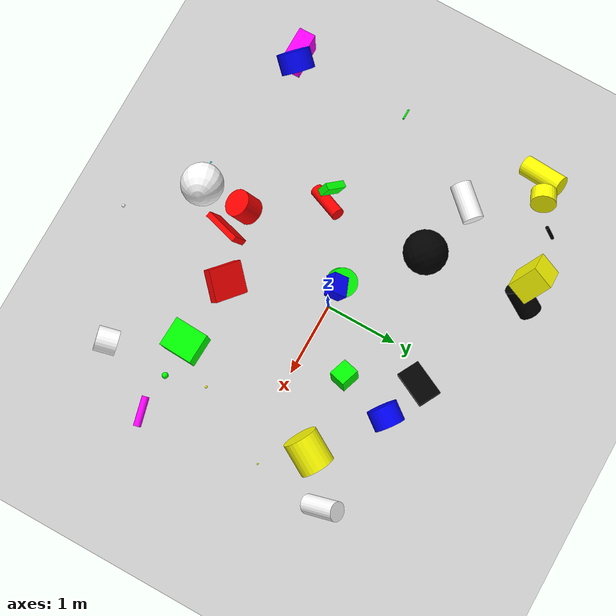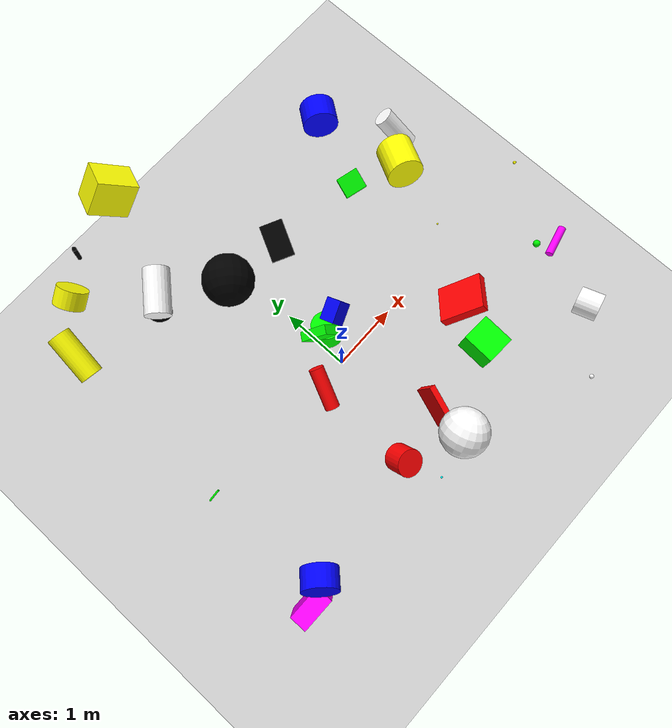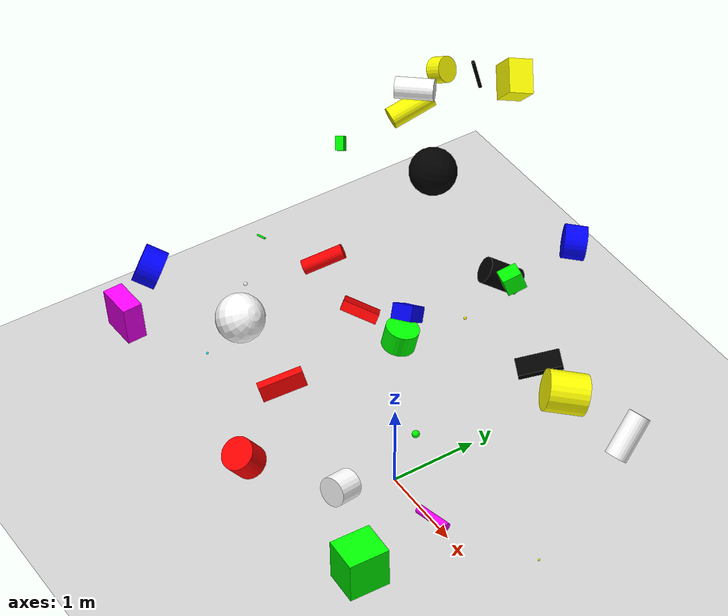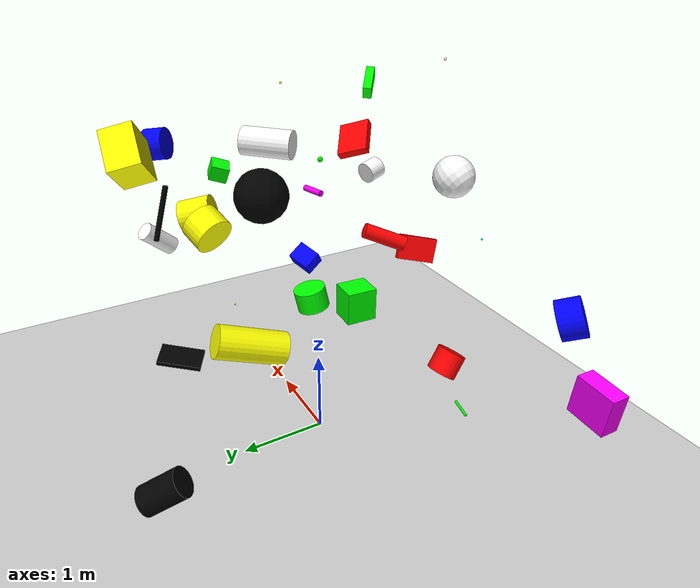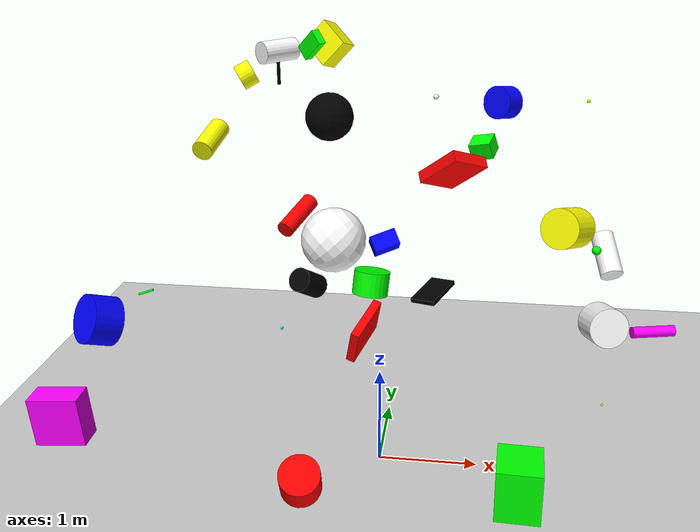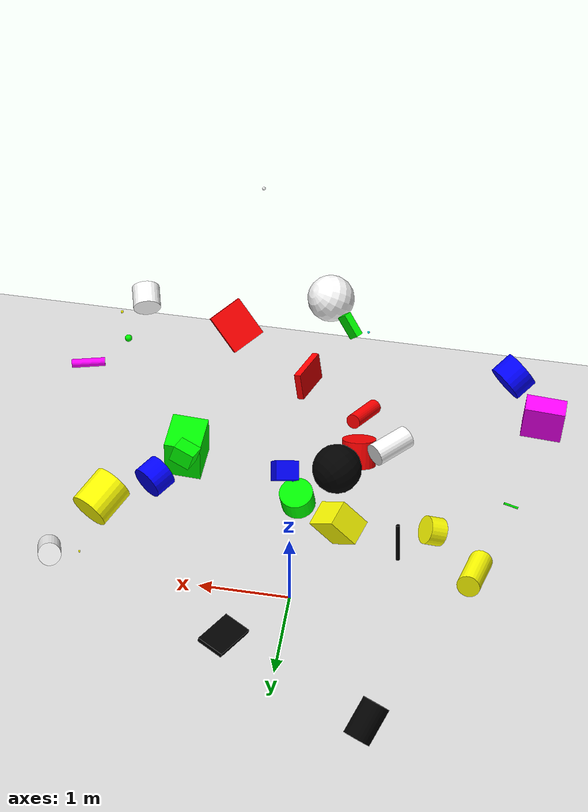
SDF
<sdf version="1.6">
 <world name="default">
  <include><uri>model://ground_plane</uri></include>
  <include><uri>model://sun</uri></include>
  <model name="model_0">
   <allow_auto_disable>false</allow_auto_disable>
   <pose>-1.374294774189893
      1.885519007449501
      3.7026255134502475
      3.005669854813967
      2.8638914943796823
      1.3077832168750223</pose>
   <link name="link">
    <inertial>
     <mass>0.0007131186897285685</mass>
     <inertia>
      <ixx>9.357279532422578e-06</ixx>
      <iyy>9.357279532422578e-06</iyy>
      <izz>1.2595235519873175e-07</izz>
      <ixy>0.0</ixy>
      <ixz>0.0</ixz>
      <iyz>0.0</iyz>
     </inertia>
    </inertial>
    <collision name="collision">
     <geometry>
      <cylinder><radius>0.018794779496375192</radius><length>0.39547418092295006</length></cylinder>
     </geometry>
     <surface>
      <bounce><restitution_coefficient>9</restitution_coefficient><threshold>5.0</threshold></bounce>
      <friction><ode><mu>3</mu></ode></friction>
     </surface>
    </collision>
    <visual name="visual">
     <geometry>
      <cylinder><radius>0.018794779496375192</radius><length>0.39547418092295006</length></cylinder>
     </geometry>
     <material>
      <diffuse>0
            0
            0
            1</diffuse>
      <specular>0
            0
            0
            1</specular>
      <ambient>1
            1
            0
            1</ambient>
     </material>
    </visual>
   </link>
  </model>
  <model name="model_1">
   <allow_auto_disable>false</allow_auto_disable>
   <pose>-0.5768004656303993
      -0.26855779351785447
      4.264016927218423
      1.6683609654142575
      2.259367356452
      2.561096728052627</pose>
   <link name="link">
    <inertial>
     <mass>0.0016738145005613634</mass>
     <inertia>
      <ixx>9.14697502546209e-06</ixx>
      <iyy>3.4614142305655505e-06</iyy>
      <izz>1.1006766216281201e-05</izz>
      <ixy>0.0</ixy>
      <ixz>0.0</ixz>
      <iyz>0.0</iyz>
     </inertia>
    </inertial>
    <collision name="collision">
     <geometry>
      <box><size>0.13811058813218288
           0.24461349022058984
           0.07577084246925933</size></box>
     </geometry>
     <surface>
      <bounce><restitution_coefficient>8</restitution_coefficient><threshold>5.0</threshold></bounce>
      <friction><ode><mu>5</mu></ode></friction>
     </surface>
    </collision>
    <visual name="visual">
     <geometry>
      <box><size>0.13811058813218288
           0.24461349022058984
           0.07577084246925933</size></box>
     </geometry>
     <material>
      <diffuse>0
            1
            0
            1</diffuse>
      <specular>1
            0
            0
            1</specular>
      <ambient>1
            0
            1
            1</ambient>
     </material>
    </visual>
   </link>
  </model>
  <model name="model_2">
   <allow_auto_disable>false</allow_auto_disable>
   <pose>1.8278756536159149
      -1.8205902466468304
      2.510964563602264
      2.6478601635915733
      1.8116980327243988
      1.3102396918117472</pose>
   <link name="link">
    <inertial>
     <mass>0.04394270827996959</mass>
     <inertia>
      <ixx>0.0004507877893239998</ixx>
      <iyy>0.0004507877893239998</iyy>
      <izz>0.00046588737495932526</izz>
      <ixy>0.0</ixy>
      <ixz>0.0</ixz>
      <iyz>0.0</iyz>
     </inertia>
    </inertial>
    <collision name="collision">
     <geometry>
      <cylinder><radius>0.14561699304823988</radius><length>0.24390467014566572</length></cylinder>
     </geometry>
     <surface>
      <bounce><restitution_coefficient>9</restitution_coefficient><threshold>5.0</threshold></bounce>
      <friction><ode><mu>3</mu></ode></friction>
     </surface>
    </collision>
    <visual name="visual">
     <geometry>
      <cylinder><radius>0.14561699304823988</radius><length>0.24390467014566572</length></cylinder>
     </geometry>
     <material>
      <diffuse>1
            1
            1
            1</diffuse>
      <specular>1
            0
            1
            1</specular>
      <ambient>1
            1
            0
            1</ambient>
     </material>
    </visual>
   </link>
  </model>
  <model name="model_3">
   <allow_auto_disable>false</allow_auto_disable>
   <pose>1.806659790921219
      0.758449552092741
      2.3470036160353365
      1.8876109645881216
      0.7274224111943212
      2.830070721979093</pose>
   <link name="link">
    <inertial>
     <mass>0.12299672670459796</mass>
     <inertia>
      <ixx>0.0029964885548564584</ixx>
      <iyy>0.0029964885548564584</iyy>
      <izz>0.0026532597325849352</izz>
      <ixy>0.0</ixy>
      <ixz>0.0</ixz>
      <iyz>0.0</iyz>
     </inertia>
    </inertial>
    <collision name="collision">
     <geometry>
      <cylinder><radius>0.20771033392686386</radius><length>0.40363024957218285</length></cylinder>
     </geometry>
     <surface>
      <bounce><restitution_coefficient>4</restitution_coefficient><threshold>5.0</threshold></bounce>
      <friction><ode><mu>3</mu></ode></friction>
     </surface>
    </collision>
    <visual name="visual">
     <geometry>
      <cylinder><radius>0.20771033392686386</radius><length>0.40363024957218285</length></cylinder>
     </geometry>
     <material>
      <diffuse>1
            1
            0
            1</diffuse>
      <specular>0
            0
            1
            1</specular>
      <ambient>0
            1
            0
            1</ambient>
     </material>
    </visual>
   </link>
  </model>
  <model name="model_4">
   <allow_auto_disable>false</allow_auto_disable>
   <pose>-1.683259599320861
      1.6609845421698122
      3.6584629614700006
      0.5373237845203087
      1.009158794376195
      0.9634726378397384</pose>
   <link name="link">
    <inertial>
     <mass>0.0445647664015624</mass>
     <inertia>
      <ixx>0.00031822511365145885</ixx>
      <iyy>0.00031822511365145885</iyy>
      <izz>0.00042090518403449306</izz>
      <ixy>0.0</ixy>
      <ixz>0.0</ixz>
      <iyz>0.0</iyz>
     </inertia>
    </inertial>
    <collision name="collision">
     <geometry>
      <cylinder><radius>0.13743942134412854</radius><length>0.17035262420774747</length></cylinder>
     </geometry>
     <surface>
      <bounce><restitution_coefficient>4</restitution_coefficient><threshold>5.0</threshold></bounce>
      <friction><ode><mu>4</mu></ode></friction>
     </surface>
    </collision>
    <visual name="visual">
     <geometry>
      <cylinder><radius>0.13743942134412854</radius><length>0.17035262420774747</length></cylinder>
     </geometry>
     <material>
      <diffuse>1
            1
            0
            1</diffuse>
      <specular>0
            1
            1
            1</specular>
      <ambient>1
            1
            0
            1</ambient>
     </material>
    </visual>
   </link>
  </model>
  <model name="model_5">
   <allow_auto_disable>false</allow_auto_disable>
   <pose>-1.1646228340529197
      0.9804064086591833
      4.026472488406187
      1.4542595413107549
      1.2609892112990713
      2.286193394007714</pose>
   <link name="link">
    <inertial>
     <mass>0.06889088895436787</mass>
     <inertia>
      <ixx>0.0011125113123153217</ixx>
      <iyy>0.0011125113123153217</iyy>
      <izz>0.00042515409117144893</izz>
      <ixy>0.0</ixy>
      <ixz>0.0</ixz>
      <iyz>0.0</iyz>
     </inertia>
    </inertial>
    <collision name="collision">
     <geometry>
      <cylinder><radius>0.11109826704437627</radius><length>0.3959270034280114</length></cylinder>
     </geometry>
     <surface>
      <bounce><restitution_coefficient>4</restitution_coefficient><threshold>5.0</threshold></bounce>
      <friction><ode><mu>5</mu></ode></friction>
     </surface>
    </collision>
    <visual name="visual">
     <geometry>
      <cylinder><radius>0.11109826704437627</radius><length>0.3959270034280114</length></cylinder>
     </geometry>
     <material>
      <diffuse>1
            1
            1
            1</diffuse>
      <specular>1
            0
            0
            1</specular>
      <ambient>1
            1
            1
            1</ambient>
     </material>
    </visual>
   </link>
  </model>
  <model name="model_6">
   <allow_auto_disable>false</allow_auto_disable>
   <pose>1.3471117144913718
      -1.3064668878806036
      0.7264518797908712
      2.8307530628275637
      1.559431719616952
      1.2142221898638477</pose>
   <link name="link">
    <inertial>
     <mass>0.25244838298998495</mass>
     <inertia>
      <ixx>0.0074903669705880934</ixx>
      <iyy>0.009171768043666484</iyy>
      <izz>0.008282861606509656</izz>
      <ixy>0.0</ixy>
      <ixz>0.0</ixz>
      <iyz>0.0</iyz>
     </inertia>
    </inertial>
    <collision name="collision">
     <geometry>
      <box><size>0.48664460438293294
           0.396104105878109
           0.4462646734329613</size></box>
     </geometry>
     <surface>
      <bounce><restitution_coefficient>4</restitution_coefficient><threshold>5.0</threshold></bounce>
      <friction><ode><mu>8</mu></ode></friction>
     </surface>
    </collision>
    <visual name="visual">
     <geometry>
      <box><size>0.48664460438293294
           0.396104105878109
           0.4462646734329613</size></box>
     </geometry>
     <material>
      <diffuse>0
            1
            0
            1</diffuse>
      <specular>0
            0
            1
            1</specular>
      <ambient>1
            1
            1
            1</ambient>
     </material>
    </visual>
   </link>
  </model>
  <model name="model_7">
   <allow_auto_disable>false</allow_auto_disable>
   <pose>-0.1083938886884761
      0.1277957452706735
      1.9183404429284676
      0.05860790143134316
      0.19561183692910436
      1.395987027916954</pose>
   <link name="link">
    <inertial>
     <mass>0.07621677721630384</mass>
     <inertia>
      <ixx>0.000949626123787911</ixx>
      <iyy>0.000949626123787911</iyy>
      <izz>0.0011847771052856107</izz>
      <ixy>0.0</ixy>
      <ixz>0.0</ixz>
      <iyz>0.0</iyz>
     </inertia>
    </inertial>
    <collision name="collision">
     <geometry>
      <cylinder><radius>0.1763226214380538</radius><length>0.2371613405553954</length></cylinder>
     </geometry>
     <surface>
      <bounce><restitution_coefficient>2</restitution_coefficient><threshold>5.0</threshold></bounce>
      <friction><ode><mu>2</mu></ode></friction>
     </surface>
    </collision>
    <visual name="visual">
     <geometry>
      <cylinder><radius>0.1763226214380538</radius><length>0.2371613405553954</length></cylinder>
     </geometry>
     <material>
      <diffuse>0
            1
            0
            1</diffuse>
      <specular>1
            1
            1
            1</specular>
      <ambient>1
            1
            1
            1</ambient>
     </material>
    </visual>
   </link>
  </model>
  <model name="model_8">
   <allow_auto_disable>false</allow_auto_disable>
   <pose>2.3324880369854997
      -1.134425295848402
      2.1534173051993135
      1.5886527521685763
      1.4374680330662728
      1.8281342649016097</pose>
   <link name="link">
    <inertial>
     <mass>0.00784975280966787</mass>
     <inertia>
      <ixx>8.463658350230044e-05</ixx>
      <iyy>8.463658350230044e-05</iyy>
      <izz>7.979523854800846e-06</izz>
      <ixy>0.0</ixy>
      <ixz>0.0</ixz>
      <iyz>0.0</iyz>
     </inertia>
    </inertial>
    <collision name="collision">
     <geometry>
      <cylinder><radius>0.0450895079570502</radius><length>0.3511205599690679</length></cylinder>
     </geometry>
     <surface>
      <bounce><restitution_coefficient>3</restitution_coefficient><threshold>5.0</threshold></bounce>
      <friction><ode><mu>4</mu></ode></friction>
     </surface>
    </collision>
    <visual name="visual">
     <geometry>
      <cylinder><radius>0.0450895079570502</radius><length>0.3511205599690679</length></cylinder>
     </geometry>
     <material>
      <diffuse>1
            0
            1
            1</diffuse>
      <specular>1
            1
            1
            1</specular>
      <ambient>1
            1
            0
            1</ambient>
     </material>
    </visual>
   </link>
  </model>
  <model name="model_9">
   <allow_auto_disable>false</allow_auto_disable>
   <pose>-0.8062665221237015
      1.946876473724859
      3.96939360100925
      0.7132324395799472
      0.24126366880094133
      1.2277373570156365</pose>
   <link name="link">
    <inertial>
     <mass>0.07518975890340789</mass>
     <inertia>
      <ixx>0.0015148714091882504</ixx>
      <iyy>0.0011418572976740326</iyy>
      <izz>0.0011997108380624227</izz>
      <ixy>0.0</ixy>
      <ixz>0.0</ixz>
      <iyz>0.0</iyz>
     </inertia>
    </inertial>
    <collision name="collision">
     <geometry>
      <box><size>0.2568439782334719
           0.3542604478226878
           0.3409798520954487</size></box>
     </geometry>
     <surface>
      <bounce><restitution_coefficient>9</restitution_coefficient><threshold>5.0</threshold></bounce>
      <friction><ode><mu>8</mu></ode></friction>
     </surface>
    </collision>
    <visual name="visual">
     <geometry>
      <box><size>0.2568439782334719
           0.3542604478226878
           0.3409798520954487</size></box>
     </geometry>
     <material>
      <diffuse>1
            1
            0
            1</diffuse>
      <specular>1
            0
            0
            1</specular>
      <ambient>1
            1
            0
            1</ambient>
     </material>
    </visual>
   </link>
  </model>
  <model name="model_10">
   <allow_auto_disable>false</allow_auto_disable>
   <pose>2.280326984193504
      1.1914604169575553
      1.914256752031347
      0.764325850728566
      0.3833377392821497
      3.033348518571033</pose>
   <link name="link">
    <inertial>
     <mass>0.008657616111190477</mass>
     <inertia>
      <ixx>0.00019379443789180255</ixx>
      <iyy>0.00019379443789180255</iyy>
      <izz>6.069478010780392e-05</izz>
      <ixy>0.0</ixy>
      <ixz>0.0</ixz>
      <iyz>0.0</iyz>
     </inertia>
    </inertial>
    <collision name="collision">
     <geometry>
      <cylinder><radius>0.1184108521678654</radius><length>0.47597046105124363</length></cylinder>
     </geometry>
     <surface>
      <bounce><restitution_coefficient>10</restitution_coefficient><threshold>5.0</threshold></bounce>
      <friction><ode><mu>6</mu></ode></friction>
     </surface>
    </collision>
    <visual name="visual">
     <geometry>
      <cylinder><radius>0.1184108521678654</radius><length>0.47597046105124363</length></cylinder>
     </geometry>
     <material>
      <diffuse>1
            1
            1
            1</diffuse>
      <specular>1
            1
            0
            1</specular>
      <ambient>1
            1
            1
            1</ambient>
     </material>
    </visual>
   </link>
  </model>
  <model name="model_11">
   <allow_auto_disable>false</allow_auto_disable>
   <pose>0.6779386272852617
      -0.8602435985342549
      3.3641430392553806
      0.38034243322295225
      0.6185521817601586
      2.5289365738171212</pose>
   <link name="link">
    <inertial>
     <mass>0.05635970997490847</mass>
     <inertia>
      <ixx>0.0006441451220178824</ixx>
      <iyy>0.0008959306809948641</iyy>
      <izz>0.0014537455710500794</izz>
      <ixy>0.0</ixy>
      <ixz>0.0</ixz>
      <iyz>0.0</iyz>
     </inertia>
    </inertial>
    <collision name="collision">
     <geometry>
      <box><size>0.42610936163477514
           0.35771426559603864
           0.09586778744790989</size></box>
     </geometry>
     <surface>
      <bounce><restitution_coefficient>10</restitution_coefficient><threshold>5.0</threshold></bounce>
      <friction><ode><mu>7</mu></ode></friction>
     </surface>
    </collision>
    <visual name="visual">
     <geometry>
      <box><size>0.42610936163477514
           0.35771426559603864
           0.09586778744790989</size></box>
     </geometry>
     <material>
      <diffuse>1
            0
            0
            1</diffuse>
      <specular>1
            0
            0
            1</specular>
      <ambient>0
            1
            1
            1</ambient>
     </material>
    </visual>
   </link>
  </model>
  <model name="model_12">
   <allow_auto_disable>false</allow_auto_disable>
   <pose>-2.1015576146823327
      1.5675193775365805
      2.9438572229148483
      0.694901532623795
      1.1273341537537462
      2.157983732710391</pose>
   <link name="link">
    <inertial>
     <mass>0.016223366104496918</mass>
     <inertia>
      <ixx>0.0003795406525929637</ixx>
      <iyy>0.0003795406525929637</iyy>
      <izz>0.00011206092178665061</izz>
      <ixy>0.0</ixy>
      <ixz>0.0</ixz>
      <iyz>0.0</iyz>
     </inertia>
    </inertial>
    <collision name="collision">
     <geometry>
      <cylinder><radius>0.11753618999856995</radius><length>0.4891748518266017</length></cylinder>
     </geometry>
     <surface>
      <bounce><restitution_coefficient>5</restitution_coefficient><threshold>5.0</threshold></bounce>
      <friction><ode><mu>10</mu></ode></friction>
     </surface>
    </collision>
    <visual name="visual">
     <geometry>
      <cylinder><radius>0.11753618999856995</radius><length>0.4891748518266017</length></cylinder>
     </geometry>
     <material>
      <diffuse>1
            1
            0
            1</diffuse>
      <specular>1
            1
            1
            1</specular>
      <ambient>1
            1
            1
            1</ambient>
     </material>
    </visual>
   </link>
  </model>
  <model name="model_13">
   <allow_auto_disable>false</allow_auto_disable>
   <pose>0.5844211524391536
      -2.028802019162115
      4.185502853803231
      2.9587241843198413
      1.2729956454438025
      1.5879467331662536</pose>
   <link name="link">
    <inertial>
     <mass>9.143822858090412e-05</mass>
     <inertia>
      <ixx>1.1361230472967659e-08</ixx>
      <iyy>1.1361230472967659e-08</iyy>
      <izz>1.1361230472967659e-08</izz>
      <ixy>0.0</ixy>
      <ixz>0.0</ixz>
      <iyz>0.0</iyz>
     </inertia>
    </inertial>
    <collision name="collision">
     <geometry><sphere><radius>0.01762458044491</radius></sphere></geometry>
     <surface>
      <bounce><restitution_coefficient>8</restitution_coefficient><threshold>5.0</threshold></bounce>
      <friction><ode><mu>0</mu></ode></friction>
     </surface>
    </collision>
    <visual name="visual">
     <geometry><sphere><radius>0.01762458044491</radius></sphere></geometry>
     <material>
      <diffuse>1
            1
            1
            1</diffuse>
      <specular>1
            1
            0
            1</specular>
      <ambient>1
            1
            1
            1</ambient>
     </material>
    </visual>
   </link>
  </model>
  <model name="model_14">
   <allow_auto_disable>false</allow_auto_disable>
   <pose>2.228648420691515
      0.23580498925084958
      0.6607437555384545
      1.839623834669117
      1.1460592935413823
      1.68260120642021</pose>
   <link name="link">
    <inertial>
     <mass>1.0791938811735725e-05</mass>
     <inertia>
      <ixx>5.7215730836982e-10</ixx>
      <iyy>5.7215730836982e-10</iyy>
      <izz>5.7215730836982e-10</izz>
      <ixy>0.0</ixy>
      <ixz>0.0</ixz>
      <iyz>0.0</iyz>
     </inertia>
    </inertial>
    <collision name="collision">
     <geometry><sphere><radius>0.011512721317302188</radius></sphere></geometry>
     <surface>
      <bounce><restitution_coefficient>10</restitution_coefficient><threshold>5.0</threshold></bounce>
      <friction><ode><mu>7</mu></ode></friction>
     </surface>
    </collision>
    <visual name="visual">
     <geometry><sphere><radius>0.011512721317302188</radius></sphere></geometry>
     <material>
      <diffuse>1
            1
            0
            1</diffuse>
      <specular>1
            0
            1
            1</specular>
      <ambient>1
            0
            0
            1</ambient>
     </material>
    </visual>
   </link>
  </model>
  <model name="model_15">
   <allow_auto_disable>false</allow_auto_disable>
   <pose>-1.145849185628539
      2.141819440649103
      1.0014256505662869
      0.8777569955711382
      2.4974472239348113
      2.226683717918751</pose>
   <link name="link">
    <inertial>
     <mass>0.12619597954089154</mass>
     <inertia>
      <ixx>0.0025371310021282453</ixx>
      <iyy>0.0025371310021282453</iyy>
      <izz>0.0014168769555197851</izz>
      <ixy>0.0</ixy>
      <ixz>0.0</ixz>
      <iyz>0.0</iyz>
     </inertia>
    </inertial>
    <collision name="collision">
     <geometry>
      <cylinder><radius>0.1498505380883031</radius><length>0.4170020675607914</length></cylinder>
     </geometry>
     <surface>
      <bounce><restitution_coefficient>3</restitution_coefficient><threshold>5.0</threshold></bounce>
      <friction><ode><mu>9</mu></ode></friction>
     </surface>
    </collision>
    <visual name="visual">
     <geometry>
      <cylinder><radius>0.1498505380883031</radius><length>0.4170020675607914</length></cylinder>
     </geometry>
     <material>
      <diffuse>0
            0
            0
            1</diffuse>
      <specular>0
            0
            1
            1</specular>
      <ambient>1
            0
            0
            1</ambient>
     </material>
    </visual>
   </link>
  </model>
  <model name="model_16">
   <allow_auto_disable>false</allow_auto_disable>
   <pose>-0.7103370087125904
      -0.40222140352402036
      2.7629324743767483
      1.9912688367554128
      2.7483081582878945
      2.889015767592095</pose>
   <link name="link">
    <inertial>
     <mass>0.01641349168827499</mass>
     <inertia>
      <ixx>0.0002794196278392779</ixx>
      <iyy>0.0002794196278392779</iyy>
      <izz>4.721613219071837e-05</izz>
      <ixy>0.0</ixy>
      <ixz>0.0</ixz>
      <iyz>0.0</iyz>
     </inertia>
    </inertial>
    <collision name="collision">
     <geometry>
      <cylinder><radius>0.07585072077959995</radius><length>0.4324642557794725</length></cylinder>
     </geometry>
     <surface>
      <bounce><restitution_coefficient>9</restitution_coefficient><threshold>5.0</threshold></bounce>
      <friction><ode><mu>4</mu></ode></friction>
     </surface>
    </collision>
    <visual name="visual">
     <geometry>
      <cylinder><radius>0.07585072077959995</radius><length>0.4324642557794725</length></cylinder>
     </geometry>
     <material>
      <diffuse>1
            0
            0
            1</diffuse>
      <specular>1
            0
            1
            1</specular>
      <ambient>1
            0
            0
            1</ambient>
     </material>
    </visual>
   </link>
  </model>
  <model name="model_17">
   <allow_auto_disable>false</allow_auto_disable>
   <pose>-2.4701247431524593
      -1.7827072392956633
      1.3796999564914674
      0.4964693525976893
      1.4846589113889108
      0.4984305804713846</pose>
   <link name="link">
    <inertial>
     <mass>0.1897915831806767</mass>
     <inertia>
      <ixx>0.0037734908944440453</ixx>
      <iyy>0.005939211191847401</iyy>
      <izz>0.003691205077416831</izz>
      <ixy>0.0</ixy>
      <ixz>0.0</ixz>
      <iyz>0.0</iyz>
     </inertia>
    </inertial>
    <collision name="collision">
     <geometry>
      <box><size>0.4303006441317923
           0.2196044268001374
           0.43630419470583903</size></box>
     </geometry>
     <surface>
      <bounce><restitution_coefficient>4</restitution_coefficient><threshold>5.0</threshold></bounce>
      <friction><ode><mu>8</mu></ode></friction>
     </surface>
    </collision>
    <visual name="visual">
     <geometry>
      <box><size>0.4303006441317923
           0.2196044268001374
           0.43630419470583903</size></box>
     </geometry>
     <material>
      <diffuse>1
            0
            1
            1</diffuse>
      <specular>0
            0
            0
            1</specular>
      <ambient>0
            0
            1
            1</ambient>
     </material>
    </visual>
   </link>
  </model>
  <model name="model_18">
   <allow_auto_disable>false</allow_auto_disable>
   <pose>1.8506146815378512
      -1.010119893456594
      2.7804677828659203
      1.3977458028453615
      2.523923751697428
      2.195421024805544</pose>
   <link name="link">
    <inertial>
     <mass>0.0006558084566040562</mass>
     <inertia>
      <ixx>3.550305884273021e-07</ixx>
      <iyy>3.550305884273021e-07</iyy>
      <izz>3.550305884273021e-07</izz>
      <ixy>0.0</ixy>
      <ixz>0.0</ixz>
      <iyz>0.0</iyz>
     </inertia>
    </inertial>
    <collision name="collision">
     <geometry><sphere><radius>0.036788695147083536</radius></sphere></geometry>
     <surface>
      <bounce><restitution_coefficient>10</restitution_coefficient><threshold>5.0</threshold></bounce>
      <friction><ode><mu>5</mu></ode></friction>
     </surface>
    </collision>
    <visual name="visual">
     <geometry><sphere><radius>0.036788695147083536</radius></sphere></geometry>
     <material>
      <diffuse>0
            1
            0
            1</diffuse>
      <specular>0
            0
            0
            1</specular>
      <ambient>0
            1
            1
            1</ambient>
     </material>
    </visual>
   </link>
  </model>
  <model name="model_19">
   <allow_auto_disable>false</allow_auto_disable>
   <pose>0.9257859630205285
      0.7178369670547289
      3.167346147864511
      1.7855377628128895
      2.813897256668224
      1.3136525987170644</pose>
   <link name="link">
    <inertial>
     <mass>0.022925465816175446</mass>
     <inertia>
      <ixx>0.0001472202208592074</ixx>
      <iyy>0.0001665218152842516</iyy>
      <izz>0.00012976922656421616</izz>
      <ixy>0.0</ixy>
      <ixz>0.0</ixz>
      <iyz>0.0</iyz>
     </inertia>
    </inertial>
    <collision name="collision">
     <geometry>
      <box><size>0.19752081207945596
           0.17003333119496802
           0.21942866517919818</size></box>
     </geometry>
     <surface>
      <bounce><restitution_coefficient>7</restitution_coefficient><threshold>5.0</threshold></bounce>
      <friction><ode><mu>7</mu></ode></friction>
     </surface>
    </collision>
    <visual name="visual">
     <geometry>
      <box><size>0.19752081207945596
           0.17003333119496802
           0.21942866517919818</size></box>
     </geometry>
     <material>
      <diffuse>0
            1
            0
            1</diffuse>
      <specular>1
            1
            1
            1</specular>
      <ambient>1
            0
            0
            1</ambient>
     </material>
    </visual>
   </link>
  </model>
  <model name="model_20">
   <allow_auto_disable>false</allow_auto_disable>
   <pose>0.4349476086908255
      1.5002644038612267
      1.2555911903290617
      2.6570783399830433
      1.333428038320237
      0.6050971345503271</pose>
   <link name="link">
    <inertial>
     <mass>0.019026309569178394</mass>
     <inertia>
      <ixx>0.0005100038309295383</ixx>
      <iyy>0.00036802829485190137</iyy>
      <izz>0.00014963526370614304</izz>
      <ixy>0.0</ixy>
      <ixz>0.0</ixz>
      <iyz>0.0</iyz>
     </inertia>
    </inertial>
    <collision name="collision">
     <geometry>
      <box><size>0.04914790490319447
           0.30324953796939724
           0.4792723548339008</size></box>
     </geometry>
     <surface>
      <bounce><restitution_coefficient>7</restitution_coefficient><threshold>5.0</threshold></bounce>
      <friction><ode><mu>0</mu></ode></friction>
     </surface>
    </collision>
    <visual name="visual">
     <geometry>
      <box><size>0.04914790490319447
           0.30324953796939724
           0.4792723548339008</size></box>
     </geometry>
     <material>
      <diffuse>0
            0
            0
            1</diffuse>
      <specular>1
            0
            0
            1</specular>
      <ambient>1
            0
            0
            1</ambient>
     </material>
    </visual>
   </link>
  </model>
  <model name="model_21">
   <allow_auto_disable>false</allow_auto_disable>
   <pose>-0.5478618210361053
      -1.854934693749607
      2.3511392337642727
      2.2994188647959772
      1.3650327172691568
      3.0743833968377645</pose>
   <link name="link">
    <inertial>
     <mass>2.726771010371371e-05</mass>
     <inertia>
      <ixx>1.4926830070814874e-09</ixx>
      <iyy>1.4926830070814874e-09</iyy>
      <izz>1.4926830070814874e-09</izz>
      <ixy>0.0</ixy>
      <ixz>0.0</ixz>
      <iyz>0.0</iyz>
     </inertia>
    </inertial>
    <collision name="collision">
     <geometry><sphere><radius>0.01169848074691816</radius></sphere></geometry>
     <surface>
      <bounce><restitution_coefficient>6</restitution_coefficient><threshold>5.0</threshold></bounce>
      <friction><ode><mu>8</mu></ode></friction>
     </surface>
    </collision>
    <visual name="visual">
     <geometry><sphere><radius>0.01169848074691816</radius></sphere></geometry>
     <material>
      <diffuse>0
            1
            1
            1</diffuse>
      <specular>0
            1
            0
            1</specular>
      <ambient>0
            1
            0
            1</ambient>
     </material>
    </visual>
   </link>
  </model>
  <model name="model_22">
   <allow_auto_disable>false</allow_auto_disable>
   <pose>1.7588296144179152
      -0.42658195762782025
      3.868542265330361
      1.304673925556502
      1.2643317752439107
      0.4217151418859461</pose>
   <link name="link">
    <inertial>
     <mass>1.3597760075030003e-06</mass>
     <inertia>
      <ixx>1.0450651050598608e-10</ixx>
      <iyy>1.0450651050598608e-10</iyy>
      <izz>1.0450651050598608e-10</izz>
      <ixy>0.0</ixy>
      <ixz>0.0</ixz>
      <iyz>0.0</iyz>
     </inertia>
    </inertial>
    <collision name="collision">
     <geometry><sphere><radius>0.01386142855097838</radius></sphere></geometry>
     <surface>
      <bounce><restitution_coefficient>8</restitution_coefficient><threshold>5.0</threshold></bounce>
      <friction><ode><mu>3</mu></ode></friction>
     </surface>
    </collision>
    <visual name="visual">
     <geometry><sphere><radius>0.01386142855097838</radius></sphere></geometry>
     <material>
      <diffuse>1
            1
            0
            1</diffuse>
      <specular>0
            1
            0
            1</specular>
      <ambient>1
            1
            0
            1</ambient>
     </material>
    </visual>
   </link>
  </model>
  <model name="model_23">
   <allow_auto_disable>false</allow_auto_disable>
   <pose>-2.126962982501296
      -1.6169601803068456
      2.206115762802354
      0.4128528407366584
      1.9784027514118707
      1.2429731875854853</pose>
   <link name="link">
    <inertial>
     <mass>0.008303472459352791</mass>
     <inertia>
      <ixx>0.00012784935414504283</ixx>
      <iyy>0.00012784935414504283</iyy>
      <izz>0.000172257749670083</izz>
      <ixy>0.0</ixy>
      <ixz>0.0</ixz>
      <iyz>0.0</iyz>
     </inertia>
    </inertial>
    <collision name="collision">
     <geometry>
      <cylinder><radius>0.2036922510814673</radius><length>0.24554742992669842</length></cylinder>
     </geometry>
     <surface>
      <bounce><restitution_coefficient>6</restitution_coefficient><threshold>5.0</threshold></bounce>
      <friction><ode><mu>0</mu></ode></friction>
     </surface>
    </collision>
    <visual name="visual">
     <geometry>
      <cylinder><radius>0.2036922510814673</radius><length>0.24554742992669842</length></cylinder>
     </geometry>
     <material>
      <diffuse>0
            0
            1
            1</diffuse>
      <specular>0
            1
            0
            1</specular>
      <ambient>0
            0
            0
            1</ambient>
     </material>
    </visual>
   </link>
  </model>
  <model name="model_24">
   <allow_auto_disable>false</allow_auto_disable>
   <pose>0.015659350479797052
      -1.3485074954574343
      2.118840123007945
      2.3719928713633047
      1.2110940359375955
      2.1114727056893616</pose>
   <link name="link">
    <inertial>
     <mass>0.03944021543257506</mass>
     <inertia>
      <ixx>0.0007225328615514542</ixx>
      <iyy>0.00029318304068609927</iyy>
      <izz>0.0009833456870417586</izz>
      <ixy>0.0</ixy>
      <ixz>0.0</ixz>
      <iyz>0.0</iyz>
     </inertia>
    </inertial>
    <collision name="collision">
     <geometry>
      <box><size>0.29030816321826813
           0.4635859529921462
           0.07017441150177828</size></box>
     </geometry>
     <surface>
      <bounce><restitution_coefficient>2</restitution_coefficient><threshold>5.0</threshold></bounce>
      <friction><ode><mu>6</mu></ode></friction>
     </surface>
    </collision>
    <visual name="visual">
     <geometry>
      <box><size>0.29030816321826813
           0.4635859529921462
           0.07017441150177828</size></box>
     </geometry>
     <material>
      <diffuse>1
            0
            0
            1</diffuse>
      <specular>0
            0
            0
            1</specular>
      <ambient>1
            0
            1
            1</ambient>
     </material>
    </visual>
   </link>
  </model>
  <model name="model_25">
   <allow_auto_disable>false</allow_auto_disable>
   <pose>-0.6244199230519798
      0.8457521180409753
      3.395764438229918
      1.7137193648877647
      0.27938788212639937
      2.487674010089147</pose>
   <link name="link">
    <inertial>
     <mass>0.1200363481773867</mass>
     <inertia>
      <ixx>0.0028977397007042133</ixx>
      <iyy>0.0028977397007042133</iyy>
      <izz>0.0028977397007042133</izz>
      <ixy>0.0</ixy>
      <ixz>0.0</ixz>
      <iyz>0.0</iyz>
     </inertia>
    </inertial>
    <collision name="collision">
     <geometry><sphere><radius>0.24566500890654194</radius></sphere></geometry>
     <surface>
      <bounce><restitution_coefficient>8</restitution_coefficient><threshold>5.0</threshold></bounce>
      <friction><ode><mu>2</mu></ode></friction>
     </surface>
    </collision>
    <visual name="visual">
     <geometry><sphere><radius>0.24566500890654194</radius></sphere></geometry>
     <material>
      <diffuse>0
            0
            0
            1</diffuse>
      <specular>1
            1
            0
            1</specular>
      <ambient>1
            0
            1
            1</ambient>
     </material>
    </visual>
   </link>
  </model>
  <model name="model_26">
   <allow_auto_disable>false</allow_auto_disable>
   <pose>-2.2937147326328655
      -0.1956901313427033
      1.8292162533321346
      1.0498778474643127
      0.7983188864075292
      1.1952290552715745</pose>
   <link name="link">
    <inertial>
     <mass>0.0002769726810537198</mass>
     <inertia>
      <ixx>5.695537881809642e-07</ixx>
      <iyy>5.695537881809642e-07</iyy>
      <izz>1.6965346723821567e-08</izz>
      <ixy>0.0</ixy>
      <ixz>0.0</ixz>
      <iyz>0.0</iyz>
     </inertia>
    </inertial>
    <collision name="collision">
     <geometry>
      <cylinder><radius>0.011068222991165694</radius><length>0.15591256304867018</length></cylinder>
     </geometry>
     <surface>
      <bounce><restitution_coefficient>6</restitution_coefficient><threshold>5.0</threshold></bounce>
      <friction><ode><mu>6</mu></ode></friction>
     </surface>
    </collision>
    <visual name="visual">
     <geometry>
      <cylinder><radius>0.011068222991165694</radius><length>0.15591256304867018</length></cylinder>
     </geometry>
     <material>
      <diffuse>0
            1
            0
            1</diffuse>
      <specular>0
            0
            0
            1</specular>
      <ambient>0
            0
            0
            1</ambient>
     </material>
    </visual>
   </link>
  </model>
  <model name="model_27">
   <allow_auto_disable>false</allow_auto_disable>
   <pose>-0.5155112457897966
      -1.5212032709108532
      0.7356066688128187
      0.10587982889739592
      2.5338774647421376
      1.8907085389777287</pose>
   <link name="link">
    <inertial>
     <mass>0.05741469887308543</mass>
     <inertia>
      <ixx>0.0009217864997385777</ixx>
      <iyy>0.0009217864997385777</iyy>
      <izz>0.0009854711711009658</izz>
      <ixy>0.0</ixy>
      <ixz>0.0</ixz>
      <iyz>0.0</iyz>
     </inertia>
    </inertial>
    <collision name="collision">
     <geometry>
      <cylinder><radius>0.1852786655624491</radius><length>0.29945632682469847</length></cylinder>
     </geometry>
     <surface>
      <bounce><restitution_coefficient>5</restitution_coefficient><threshold>5.0</threshold></bounce>
      <friction><ode><mu>3</mu></ode></friction>
     </surface>
    </collision>
    <visual name="visual">
     <geometry>
      <cylinder><radius>0.1852786655624491</radius><length>0.29945632682469847</length></cylinder>
     </geometry>
     <material>
      <diffuse>1
            0
            0
            1</diffuse>
      <specular>1
            1
            1
            1</specular>
      <ambient>1
            1
            0
            1</ambient>
     </material>
    </visual>
   </link>
  </model>
  <model name="model_28">
   <allow_auto_disable>false</allow_auto_disable>
   <pose>-0.17014060242784357
      -1.6791007878666253
      3.02214104300677
      2.574511859690524
      2.4317864308077453
      2.7340765916925793</pose>
   <link name="link">
    <inertial>
     <mass>0.11293192310336782</mass>
     <inertia>
      <ixx>0.0026868881808006975</ixx>
      <iyy>0.0026868881808006975</iyy>
      <izz>0.0026868881808006975</izz>
      <ixy>0.0</ixy>
      <ixz>0.0</ixz>
      <iyz>0.0</iyz>
     </inertia>
    </inertial>
    <collision name="collision">
     <geometry><sphere><radius>0.24388575745126773</radius></sphere></geometry>
     <surface>
      <bounce><restitution_coefficient>10</restitution_coefficient><threshold>5.0</threshold></bounce>
      <friction><ode><mu>8</mu></ode></friction>
     </surface>
    </collision>
    <visual name="visual">
     <geometry><sphere><radius>0.24388575745126773</radius></sphere></geometry>
     <material>
      <diffuse>1
            1
            1
            1</diffuse>
      <specular>0
            1
            1
            1</specular>
      <ambient>0
            1
            1
            1</ambient>
     </material>
    </visual>
   </link>
  </model>
  <model name="model_29">
   <allow_auto_disable>false</allow_auto_disable>
   <pose>0.02038136144055347
      0.12474417007958749
      2.3415413221876547
      0.465336224923185
      2.247713439189678
      2.316655544022785</pose>
   <link name="link">
    <inertial>
     <mass>0.005098408862401851</mass>
     <inertia>
      <ixx>4.373622704388439e-05</ixx>
      <iyy>2.8045881145316698e-05</iyy>
      <izz>3.783433937136827e-05</izz>
      <ixy>0.0</ixy>
      <ixz>0.0</ixz>
      <iyz>0.0</iyz>
     </inertia>
    </inertial>
    <collision name="collision">
     <geometry>
      <box><size>0.16143075107559568
           0.250977827772412
           0.19987750193177697</size></box>
     </geometry>
     <surface>
      <bounce><restitution_coefficient>6</restitution_coefficient><threshold>5.0</threshold></bounce>
      <friction><ode><mu>2</mu></ode></friction>
     </surface>
    </collision>
    <visual name="visual">
     <geometry>
      <box><size>0.16143075107559568
           0.250977827772412
           0.19987750193177697</size></box>
     </geometry>
     <material>
      <diffuse>0
            0
            1
            1</diffuse>
      <specular>1
            0
            0
            1</specular>
      <ambient>1
            0
            1
            1</ambient>
     </material>
    </visual>
   </link>
  </model>
  <model name="model_30">
   <allow_auto_disable>false</allow_auto_disable>
   <pose>1.1089661084307245
      1.3048756310802
      3.496157909880531
      0.024309857221199237
      1.6988398637337871
      0.9507416728064751</pose>
   <link name="link">
    <inertial>
     <mass>0.07746976290739606</mass>
     <inertia>
      <ixx>0.0008528789217517034</ixx>
      <iyy>0.0008528789217517034</iyy>
      <izz>0.0010812048908855456</izz>
      <ixy>0.0</ixy>
      <ixz>0.0</ixz>
      <iyz>0.0</iyz>
     </inertia>
    </inertial>
    <collision name="collision">
     <geometry>
      <cylinder><radius>0.16707169750425185</radius><length>0.21993489725795165</length></cylinder>
     </geometry>
     <surface>
      <bounce><restitution_coefficient>9</restitution_coefficient><threshold>5.0</threshold></bounce>
      <friction><ode><mu>3</mu></ode></friction>
     </surface>
    </collision>
    <visual name="visual">
     <geometry>
      <cylinder><radius>0.16707169750425185</radius><length>0.21993489725795165</length></cylinder>
     </geometry>
     <material>
      <diffuse>0
            0
            1
            1</diffuse>
      <specular>1
            0
            0
            1</specular>
      <ambient>1
            0
            1
            1</ambient>
     </material>
    </visual>
   </link>
  </model>
 </world>
</sdf>
